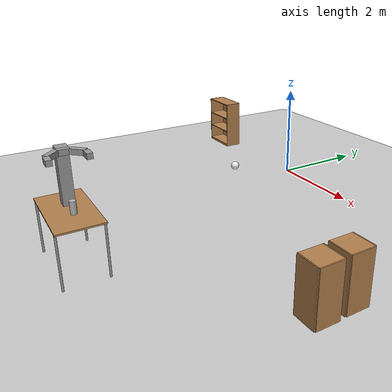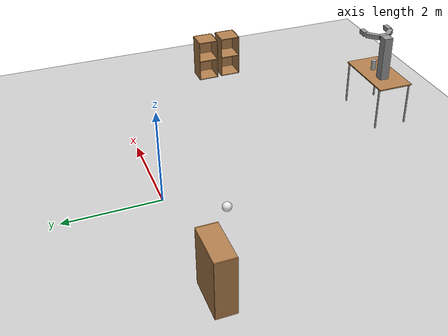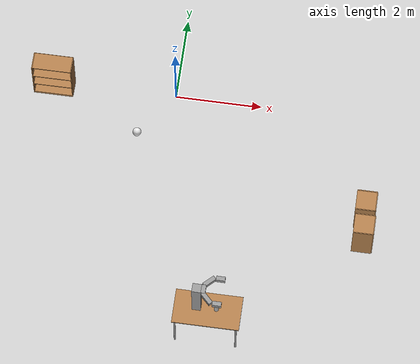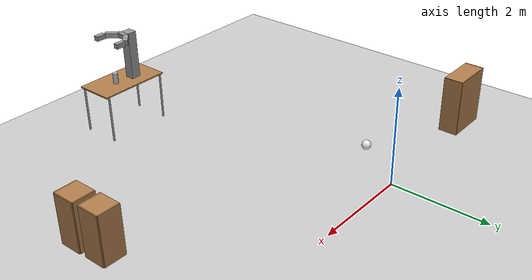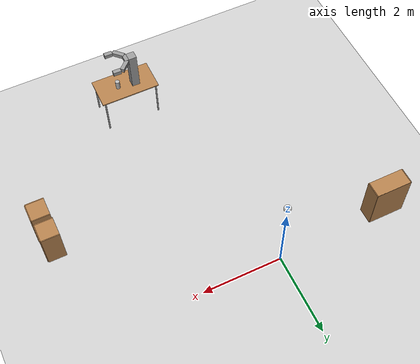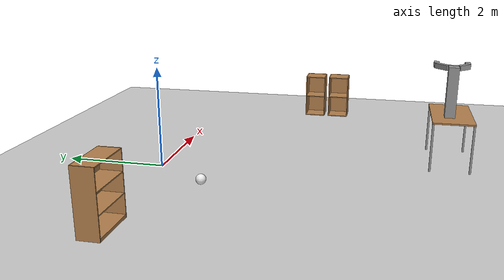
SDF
<sdf version="1.6">
 <world name="default">
  <model name="ground_plane">
   <static>1</static>
   <link name="link">
    <collision name="collision">
     <geometry><plane><normal>0 0 1</normal><size>100 100</size></plane></geometry>
     <surface>
      <contact><collide_bitmask>65535</collide_bitmask></contact>
      <friction><ode><mu>100</mu><mu2>50</mu2></ode></friction>
     </surface>
    </collision>
    <visual name="visual">
     <cast_shadows>0</cast_shadows>
     <geometry><plane><normal>0 0 1</normal><size>100 100</size></plane></geometry>
     <material>
      <script><uri>file://media/materials/scripts/gazebo.material</uri><name>Gazebo/Grey</name></script>
     </material>
    </visual>
   </link>
  </model>
  <model name="cabinet">
   <static>1</static>
   <link name="cabinet_bottom_plate">
    <inertial>
     <pose>0 0 -1 0 -0 0</pose>
     <inertia><ixx>2.05</ixx><ixy>0</ixy><ixz>0</ixz><iyy>2.05</iyy><iyz>0</iyz><izz>2.05</izz></inertia>
     <mass>25</mass>
    </inertial>
    <collision name="cabinet_bottom_plate_geom">
     <pose>0 0 0.01 0 -0 0</pose>
     <geometry><box><size>0.45 0.45 0.02</size></box></geometry>
    </collision>
    <visual name="cabinet_bottom_plate_geom_visual">
     <pose>0 0 0.01 0 -0 0</pose>
     <geometry><box><size>0.45 0.45 0.02</size></box></geometry>
     <material>
      <script><uri>file://media/materials/scripts/gazebo.material</uri><name>Gazebo/Wood</name></script>
     </material>
    </visual>
    <collision name="cabinet_bottom_plate_geom_cabinet_back_plate">
     <pose>0.235 0 0.51 0 -0 0</pose>
     <geometry><box><size>0.02 0.45 1.02</size></box></geometry>
    </collision>
    <visual name="cabinet_bottom_plate_geom_cabinet_back_plate_visual">
     <pose>0.235 0 0.51 0 -0 0</pose>
     <geometry><box><size>0.02 0.45 1.02</size></box></geometry>
     <material>
      <script><uri>file://media/materials/scripts/gazebo.material</uri><name>Gazebo/Wood</name></script>
     </material>
    </visual>
    <collision name="cabinet_bottom_plate_geom_cabinet_left_plate">
     <pose>0 0.235 0.51 0 -0 0</pose>
     <geometry><box><size>0.45 0.02 1.02</size></box></geometry>
    </collision>
    <visual name="cabinet_bottom_plate_geom_cabinet_left_plate_visual">
     <pose>0 0.235 0.51 0 -0 0</pose>
     <geometry><box><size>0.45 0.02 1.02</size></box></geometry>
     <material>
      <script><uri>file://media/materials/scripts/gazebo.material</uri><name>Gazebo/Wood</name></script>
     </material>
    </visual>
    <collision name="cabinet_bottom_plate_geom_cabinet_middle_plate">
     <pose>0 0 0.51 0 -0 0</pose>
     <geometry><box><size>0.45 0.45 0.02</size></box></geometry>
    </collision>
    <visual name="cabinet_bottom_plate_geom_cabinet_middle_plate_visual">
     <pose>0 0 0.51 0 -0 0</pose>
     <geometry><box><size>0.45 0.45 0.02</size></box></geometry>
     <material>
      <script><uri>file://media/materials/scripts/gazebo.material</uri><name>Gazebo/Wood</name></script>
     </material>
    </visual>
    <collision name="cabinet_bottom_plate_geom_cabinet_right_plate">
     <pose>0 -0.235 0.51 0 -0 0</pose>
     <geometry><box><size>0.45 0.02 1.02</size></box></geometry>
    </collision>
    <visual name="cabinet_bottom_plate_geom_cabinet_right_plate_visual">
     <pose>0 -0.235 0.51 0 -0 0</pose>
     <geometry><box><size>0.45 0.02 1.02</size></box></geometry>
     <material>
      <script><uri>file://media/materials/scripts/gazebo.material</uri><name>Gazebo/Wood</name></script>
     </material>
    </visual>
    <collision name="cabinet_bottom_plate_geom_cabinet_top_plate">
     <pose>0 0 1.01 0 -0 0</pose>
     <geometry><box><size>0.45 0.45 0.02</size></box></geometry>
    </collision>
    <visual name="cabinet_bottom_plate_geom_cabinet_top_plate_visual">
     <pose>0 0 1.01 0 -0 0</pose>
     <geometry><box><size>0.45 0.45 0.02</size></box></geometry>
     <material>
      <script><uri>file://media/materials/scripts/gazebo.material</uri><name>Gazebo/Wood</name></script>
     </material>
    </visual>
   </link>
   <pose>4.68279 -2.5185 0 0 -0 0</pose>
  </model>
  <model name="bookshelf">
   <static>1</static>
   <link name="link">
    <inertial><mass>1</mass></inertial>
    <collision name="back">
     <pose>0 0.005 0.6 0 -0 0</pose>
     <geometry><box><size>0.9 0.01 1.2</size></box></geometry>
    </collision>
    <visual name="visual1">
     <pose>0 0.005 0.6 0 -0 0</pose>
     <geometry><box><size>0.9 0.01 1.2</size></box></geometry>
     <material>
      <script><uri>file://media/materials/scripts/gazebo.material</uri><name>Gazebo/Wood</name></script>
     </material>
    </visual>
    <collision name="left_side">
     <pose>0.45 -0.195 0.6 0 -0 0</pose>
     <geometry><box><size>0.02 0.4 1.2</size></box></geometry>
    </collision>
    <visual name="visual2">
     <pose>0.45 -0.195 0.6 0 -0 0</pose>
     <geometry><box><size>0.02 0.4 1.2</size></box></geometry>
     <material>
      <script><uri>file://media/materials/scripts/gazebo.material</uri><name>Gazebo/Wood</name></script>
     </material>
    </visual>
    <collision name="right_side">
     <pose>-0.45 -0.195 0.6 0 -0 0</pose>
     <geometry><box><size>0.02 0.4 1.2</size></box></geometry>
    </collision>
    <visual name="visual3">
     <pose>-0.45 -0.195 0.6 0 -0 0</pose>
     <geometry><box><size>0.02 0.4 1.2</size></box></geometry>
     <material>
      <script><uri>file://media/materials/scripts/gazebo.material</uri><name>Gazebo/Wood</name></script>
     </material>
    </visual>
    <collision name="bottom">
     <pose>0 -0.195 0.03 0 -0 0</pose>
     <geometry><box><size>0.88 0.4 0.06</size></box></geometry>
    </collision>
    <visual name="visual4">
     <pose>0 -0.195 0.03 0 -0 0</pose>
     <geometry><box><size>0.88 0.4 0.06</size></box></geometry>
     <material>
      <script><uri>file://media/materials/scripts/gazebo.material</uri><name>Gazebo/Wood</name></script>
     </material>
    </visual>
    <collision name="top">
     <pose>0 -0.195 1.19 0 -0 0</pose>
     <geometry><box><size>0.88 0.4 0.02</size></box></geometry>
    </collision>
    <visual name="visual5">
     <pose>0 -0.195 1.19 0 -0 0</pose>
     <geometry><box><size>0.88 0.4 0.02</size></box></geometry>
     <material>
      <script><uri>file://media/materials/scripts/gazebo.material</uri><name>Gazebo/Wood</name></script>
     </material>
    </visual>
    <collision name="low_shelf">
     <pose>0 -0.195 0.43 0 -0 0</pose>
     <geometry><box><size>0.88 0.4 0.02</size></box></geometry>
    </collision>
    <visual name="visual6">
     <pose>0 -0.195 0.43 0 -0 0</pose>
     <geometry><box><size>0.88 0.4 0.02</size></box></geometry>
     <material>
      <script><uri>file://media/materials/scripts/gazebo.material</uri><name>Gazebo/Wood</name></script>
     </material>
    </visual>
    <collision name="high_shelf">
     <pose>0 -0.195 0.8 0 -0 0</pose>
     <geometry><box><size>0.88 0.4 0.02</size></box></geometry>
    </collision>
    <visual name="visual7">
     <pose>0 -0.195 0.8 0 -0 0</pose>
     <geometry><box><size>0.88 0.4 0.02</size></box></geometry>
     <material>
      <script><uri>file://media/materials/scripts/gazebo.material</uri><name>Gazebo/Wood</name></script>
     </material>
    </visual>
   </link>
   <pose>-2.84106 0.072068 0 0 -0 0</pose>
  </model>
  <model name="cabinet_0">
   <static>1</static>
   <link name="cabinet_bottom_plate">
    <inertial>
     <pose>0 0 -1 0 -0 0</pose>
     <inertia><ixx>2.05</ixx><ixy>0</ixy><ixz>0</ixz><iyy>2.05</iyy><iyz>0</iyz><izz>2.05</izz></inertia>
     <mass>25</mass>
    </inertial>
    <collision name="cabinet_bottom_plate_geom">
     <pose>0 0 0.01 0 -0 0</pose>
     <geometry><box><size>0.45 0.45 0.02</size></box></geometry>
    </collision>
    <visual name="cabinet_bottom_plate_geom_visual">
     <pose>0 0 0.01 0 -0 0</pose>
     <geometry><box><size>0.45 0.45 0.02</size></box></geometry>
     <material>
      <script><uri>file://media/materials/scripts/gazebo.material</uri><name>Gazebo/Wood</name></script>
     </material>
    </visual>
    <collision name="cabinet_bottom_plate_geom_cabinet_back_plate">
     <pose>0.235 0 0.51 0 -0 0</pose>
     <geometry><box><size>0.02 0.45 1.02</size></box></geometry>
    </collision>
    <visual name="cabinet_bottom_plate_geom_cabinet_back_plate_visual">
     <pose>0.235 0 0.51 0 -0 0</pose>
     <geometry><box><size>0.02 0.45 1.02</size></box></geometry>
     <material>
      <script><uri>file://media/materials/scripts/gazebo.material</uri><name>Gazebo/Wood</name></script>
     </material>
    </visual>
    <collision name="cabinet_bottom_plate_geom_cabinet_left_plate">
     <pose>0 0.235 0.51 0 -0 0</pose>
     <geometry><box><size>0.45 0.02 1.02</size></box></geometry>
    </collision>
    <visual name="cabinet_bottom_plate_geom_cabinet_left_plate_visual">
     <pose>0 0.235 0.51 0 -0 0</pose>
     <geometry><box><size>0.45 0.02 1.02</size></box></geometry>
     <material>
      <script><uri>file://media/materials/scripts/gazebo.material</uri><name>Gazebo/Wood</name></script>
     </material>
    </visual>
    <collision name="cabinet_bottom_plate_geom_cabinet_middle_plate">
     <pose>0 0 0.51 0 -0 0</pose>
     <geometry><box><size>0.45 0.45 0.02</size></box></geometry>
    </collision>
    <visual name="cabinet_bottom_plate_geom_cabinet_middle_plate_visual">
     <pose>0 0 0.51 0 -0 0</pose>
     <geometry><box><size>0.45 0.45 0.02</size></box></geometry>
     <material>
      <script><uri>file://media/materials/scripts/gazebo.material</uri><name>Gazebo/Wood</name></script>
     </material>
    </visual>
    <collision name="cabinet_bottom_plate_geom_cabinet_right_plate">
     <pose>0 -0.235 0.51 0 -0 0</pose>
     <geometry><box><size>0.45 0.02 1.02</size></box></geometry>
    </collision>
    <visual name="cabinet_bottom_plate_geom_cabinet_right_plate_visual">
     <pose>0 -0.235 0.51 0 -0 0</pose>
     <geometry><box><size>0.45 0.02 1.02</size></box></geometry>
     <material>
      <script><uri>file://media/materials/scripts/gazebo.material</uri><name>Gazebo/Wood</name></script>
     </material>
    </visual>
    <collision name="cabinet_bottom_plate_geom_cabinet_top_plate">
     <pose>0 0 1.01 0 -0 0</pose>
     <geometry><box><size>0.45 0.45 0.02</size></box></geometry>
    </collision>
    <visual name="cabinet_bottom_plate_geom_cabinet_top_plate_visual">
     <pose>0 0 1.01 0 -0 0</pose>
     <geometry><box><size>0.45 0.45 0.02</size></box></geometry>
     <material>
      <script><uri>file://media/materials/scripts/gazebo.material</uri><name>Gazebo/Wood</name></script>
     </material>
    </visual>
   </link>
   <pose>4.70024 -3.10262 0 0 -0 0</pose>
  </model>
  <model name="table_2">
   <static>1</static>
   <link name="link">
    <collision name="surface">
     <pose>0 0 1 0 -0 0</pose>
     <geometry><box><size>1.5 0.8 0.03</size></box></geometry>
     <surface><friction><ode><mu>0.6</mu><mu2>0.6</mu2></ode></friction></surface>
    </collision>
    <visual name="visual1">
     <pose>0 0 1 0 -0 0</pose>
     <geometry><box><size>1.5 0.8 0.03</size></box></geometry>
     <material>
      <script><uri>file://media/materials/scripts/gazebo.material</uri><name>Gazebo/Wood</name></script>
     </material>
    </visual>
    <collision name="front_left_leg">
     <pose>0.68 0.38 0.5 0 -0 0</pose>
     <geometry><cylinder><radius>0.02</radius><length>1</length></cylinder></geometry>
    </collision>
    <visual name="front_left_leg">
     <pose>0.68 0.38 0.5 0 -0 0</pose>
     <geometry><cylinder><radius>0.02</radius><length>1</length></cylinder></geometry>
     <material>
      <script><uri>file://media/materials/scripts/gazebo.material</uri><name>Gazebo/Grey</name></script>
     </material>
    </visual>
    <collision name="front_right_leg">
     <pose>0.68 -0.38 0.5 0 -0 0</pose>
     <geometry><cylinder><radius>0.02</radius><length>1</length></cylinder></geometry>
    </collision>
    <visual name="front_right_leg">
     <pose>0.68 -0.38 0.5 0 -0 0</pose>
     <geometry><cylinder><radius>0.02</radius><length>1</length></cylinder></geometry>
     <material>
      <script><uri>file://media/materials/scripts/gazebo.material</uri><name>Gazebo/Grey</name></script>
     </material>
    </visual>
    <collision name="back_right_leg">
     <pose>-0.68 -0.38 0.5 0 -0 0</pose>
     <geometry><cylinder><radius>0.02</radius><length>1</length></cylinder></geometry>
    </collision>
    <visual name="back_right_leg">
     <pose>-0.68 -0.38 0.5 0 -0 0</pose>
     <geometry><cylinder><radius>0.02</radius><length>1</length></cylinder></geometry>
     <material>
      <script><uri>file://media/materials/scripts/gazebo.material</uri><name>Gazebo/Grey</name></script>
     </material>
    </visual>
    <collision name="back_left_leg">
     <pose>-0.68 0.38 0.5 0 -0 0</pose>
     <geometry><cylinder><radius>0.02</radius><length>1</length></cylinder></geometry>
    </collision>
    <visual name="back_left_leg">
     <pose>-0.68 0.38 0.5 0 -0 0</pose>
     <geometry><cylinder><radius>0.02</radius><length>1</length></cylinder></geometry>
     <material>
      <script><uri>file://media/materials/scripts/gazebo.material</uri><name>Gazebo/Grey</name></script>
     </material>
    </visual>
   </link>
   <pose>1.50507 -5.63553 0 0 -0 0</pose>
  </model>
  <model name="RobotGripper_clone">
   <link name="link_0">
    <pose>-0.270333 0 -0.375 0 -0 0</pose>
    <inertial>
     <mass>1</mass>
     <inertia>
      <ixx>0.166667</ixx>
      <ixy>0</ixy>
      <ixz>0</ixz>
      <iyy>0.166667</iyy>
      <iyz>0</iyz>
      <izz>0.166667</izz>
     </inertia>
     <pose>0 0 -0.5 0 -0 0</pose>
    </inertial>
    <visual name="visual">
     <geometry><box><size>0.2 0.2 1</size></box></geometry>
     <material>
      <lighting>1</lighting>
      <script><uri>file://media/materials/scripts/gazebo.material</uri><name>Gazebo/Grey</name></script>
      <shader type="pixel"><normal_map>__default__</normal_map></shader>
      <ambient>0.3 0.3 0.3 1</ambient>
      <diffuse>0.7 0.7 0.7 1</diffuse>
      <specular>0.01 0.01 0.01 1</specular>
      <emissive>0 0 0 1</emissive>
     </material>
    </visual>
    <collision name="collision">
     <geometry><box><size>0.2 0.2 1</size></box></geometry>
     <surface>
      <friction>
       <ode><mu>1</mu><mu2>1</mu2><fdir1>0 0 0</fdir1><slip1>0</slip1><slip2>0</slip2></ode>
       <torsional>
        <coefficient>1</coefficient>
        <patch_radius>0</patch_radius>
        <surface_radius>0</surface_radius>
        <use_patch_radius>1</use_patch_radius>
        <ode><slip>0</slip></ode>
       </torsional>
      </friction>
      <bounce><restitution_coefficient>0</restitution_coefficient><threshold>1e+06</threshold></bounce>
      <contact>
       <collide_without_contact>0</collide_without_contact>
       <collide_without_contact_bitmask>1</collide_without_contact_bitmask>
       <collide_bitmask>1</collide_bitmask>
       <ode>
        <soft_cfm>0</soft_cfm>
        <soft_erp>0.2</soft_erp>
        <kp>1e+13</kp>
        <kd>1</kd>
        <max_vel>0.01</max_vel>
        <min_depth>0</min_depth>
       </ode>
       <bullet>
        <split_impulse>1</split_impulse>
        <split_impulse_penetration_threshold>-0.01</split_impulse_penetration_threshold>
        <soft_cfm>0</soft_cfm>
        <soft_erp>0.2</soft_erp>
        <kp>1e+13</kp>
        <kd>1</kd>
       </bullet>
      </contact>
     </surface>
    </collision>
   </link>
   <link name="link_1">
    <pose>-0.120333 0 0.075 0 -0 0</pose>
    <inertial>
     <mass>1</mass>
     <inertia>
      <ixx>0.166667</ixx>
      <ixy>0</ixy>
      <ixz>0</ixz>
      <iyy>0.166667</iyy>
      <iyz>0</iyz>
      <izz>0.166667</izz>
     </inertia>
    </inertial>
    <visual name="visual">
     <geometry><box><size>0.1 0.2 0.1</size></box></geometry>
     <material>
      <lighting>1</lighting>
      <script><uri>file://media/materials/scripts/gazebo.material</uri><name>Gazebo/Grey</name></script>
      <shader type="pixel"><normal_map>__default__</normal_map></shader>
      <ambient>0.3 0.3 0.3 1</ambient>
      <diffuse>0.7 0.7 0.7 1</diffuse>
      <specular>0.01 0.01 0.01 1</specular>
      <emissive>0 0 0 1</emissive>
     </material>
    </visual>
    <collision name="collision">
     <geometry><box><size>0.1 0.2 0.1</size></box></geometry>
     <surface>
      <friction>
       <ode><mu>1</mu><mu2>1</mu2><fdir1>0 0 0</fdir1><slip1>0</slip1><slip2>0</slip2></ode>
       <torsional>
        <coefficient>1</coefficient>
        <patch_radius>0</patch_radius>
        <surface_radius>0</surface_radius>
        <use_patch_radius>1</use_patch_radius>
        <ode><slip>0</slip></ode>
       </torsional>
      </friction>
      <bounce><restitution_coefficient>0</restitution_coefficient><threshold>1e+06</threshold></bounce>
      <contact>
       <collide_without_contact>0</collide_without_contact>
       <collide_without_contact_bitmask>1</collide_without_contact_bitmask>
       <collide_bitmask>1</collide_bitmask>
       <ode>
        <soft_cfm>0</soft_cfm>
        <soft_erp>0.2</soft_erp>
        <kp>1e+13</kp>
        <kd>1</kd>
        <max_vel>0.01</max_vel>
        <min_depth>0</min_depth>
       </ode>
       <bullet>
        <split_impulse>1</split_impulse>
        <split_impulse_penetration_threshold>-0.01</split_impulse_penetration_threshold>
        <soft_cfm>0</soft_cfm>
        <soft_erp>0.2</soft_erp>
        <kp>1e+13</kp>
        <kd>1</kd>
       </bullet>
      </contact>
     </surface>
    </collision>
   </link>
   <link name="link_2">
    <pose>-0.020333 0.2 0.075 0 0 -0.78539</pose>
    <inertial>
     <mass>1</mass>
     <inertia>
      <ixx>0.166667</ixx>
      <ixy>0</ixy>
      <ixz>0</ixz>
      <iyy>0.166667</iyy>
      <iyz>0</iyz>
      <izz>0.166667</izz>
     </inertia>
    </inertial>
    <visual name="visual">
     <geometry><box><size>0.1 0.3 0.1</size></box></geometry>
     <material>
      <lighting>1</lighting>
      <script><uri>file://media/materials/scripts/gazebo.material</uri><name>Gazebo/Grey</name></script>
      <shader type="pixel"><normal_map>__default__</normal_map></shader>
      <ambient>0.3 0.3 0.3 1</ambient>
      <diffuse>0.7 0.7 0.7 1</diffuse>
      <specular>0.01 0.01 0.01 1</specular>
      <emissive>0 0 0 1</emissive>
     </material>
    </visual>
    <collision name="collision">
     <geometry><box><size>0.1 0.3 0.1</size></box></geometry>
     <surface>
      <friction>
       <ode><mu>1</mu><mu2>1</mu2><fdir1>0 0 0</fdir1><slip1>0</slip1><slip2>0</slip2></ode>
       <torsional>
        <coefficient>1</coefficient>
        <patch_radius>0</patch_radius>
        <surface_radius>0</surface_radius>
        <use_patch_radius>1</use_patch_radius>
        <ode><slip>0</slip></ode>
       </torsional>
      </friction>
      <bounce><restitution_coefficient>0</restitution_coefficient><threshold>1e+06</threshold></bounce>
      <contact>
       <collide_without_contact>0</collide_without_contact>
       <collide_without_contact_bitmask>1</collide_without_contact_bitmask>
       <collide_bitmask>1</collide_bitmask>
       <ode>
        <soft_cfm>0</soft_cfm>
        <soft_erp>0.2</soft_erp>
        <kp>1e+13</kp>
        <kd>1</kd>
        <max_vel>0.01</max_vel>
        <min_depth>0</min_depth>
       </ode>
       <bullet>
        <split_impulse>1</split_impulse>
        <split_impulse_penetration_threshold>-0.01</split_impulse_penetration_threshold>
        <soft_cfm>0</soft_cfm>
        <soft_erp>0.2</soft_erp>
        <kp>1e+13</kp>
        <kd>1</kd>
       </bullet>
      </contact>
     </surface>
    </collision>
   </link>
   <link name="link_2_clone">
    <pose>-0.020333 -0.2 0.075 0 -0 0.78539</pose>
    <inertial>
     <mass>1</mass>
     <inertia>
      <ixx>0.166667</ixx>
      <ixy>0</ixy>
      <ixz>0</ixz>
      <iyy>0.166667</iyy>
      <iyz>0</iyz>
      <izz>0.166667</izz>
     </inertia>
    </inertial>
    <visual name="visual">
     <geometry><box><size>0.1 0.3 0.1</size></box></geometry>
     <material>
      <lighting>1</lighting>
      <script><uri>file://media/materials/scripts/gazebo.material</uri><name>Gazebo/Grey</name></script>
      <shader type="pixel"><normal_map>__default__</normal_map></shader>
      <ambient>0.3 0.3 0.3 1</ambient>
      <diffuse>0.7 0.7 0.7 1</diffuse>
      <specular>0.01 0.01 0.01 1</specular>
      <emissive>0 0 0 1</emissive>
     </material>
    </visual>
    <collision name="collision">
     <geometry><box><size>0.1 0.3 0.1</size></box></geometry>
     <surface>
      <friction>
       <ode><mu>1</mu><mu2>1</mu2><fdir1>0 0 0</fdir1><slip1>0</slip1><slip2>0</slip2></ode>
       <torsional>
        <coefficient>1</coefficient>
        <patch_radius>0</patch_radius>
        <surface_radius>0</surface_radius>
        <use_patch_radius>1</use_patch_radius>
        <ode><slip>0</slip></ode>
       </torsional>
      </friction>
      <bounce><restitution_coefficient>0</restitution_coefficient><threshold>1e+06</threshold></bounce>
      <contact>
       <collide_without_contact>0</collide_without_contact>
       <collide_without_contact_bitmask>1</collide_without_contact_bitmask>
       <collide_bitmask>1</collide_bitmask>
       <ode>
        <soft_cfm>0</soft_cfm>
        <soft_erp>0.2</soft_erp>
        <kp>1e+13</kp>
        <kd>1</kd>
        <max_vel>0.01</max_vel>
        <min_depth>0</min_depth>
       </ode>
       <bullet>
        <split_impulse>1</split_impulse>
        <split_impulse_penetration_threshold>-0.01</split_impulse_penetration_threshold>
        <soft_cfm>0</soft_cfm>
        <soft_erp>0.2</soft_erp>
        <kp>1e+13</kp>
        <kd>1</kd>
       </bullet>
      </contact>
     </surface>
    </collision>
   </link>
   <link name="link_3">
    <pose>0.215667 0.3 0.075 0 -0 1.5707</pose>
    <inertial>
     <mass>1</mass>
     <inertia>
      <ixx>0.166667</ixx>
      <ixy>0</ixy>
      <ixz>0</ixz>
      <iyy>0.166667</iyy>
      <iyz>0</iyz>
      <izz>0.166667</izz>
     </inertia>
    </inertial>
    <visual name="visual">
     <geometry><box><size>0.1 0.2 0.1</size></box></geometry>
     <material>
      <lighting>1</lighting>
      <script><uri>file://media/materials/scripts/gazebo.material</uri><name>Gazebo/Grey</name></script>
      <shader type="pixel"><normal_map>__default__</normal_map></shader>
      <ambient>0.3 0.3 0.3 1</ambient>
      <diffuse>0.7 0.7 0.7 1</diffuse>
      <specular>0.01 0.01 0.01 1</specular>
      <emissive>0 0 0 1</emissive>
     </material>
    </visual>
    <collision name="collision">
     <geometry><box><size>0.1 0.2 0.1</size></box></geometry>
     <surface>
      <friction>
       <ode><mu>1</mu><mu2>1</mu2><fdir1>0 0 0</fdir1><slip1>0</slip1><slip2>0</slip2></ode>
       <torsional>
        <coefficient>1</coefficient>
        <patch_radius>0</patch_radius>
        <surface_radius>0</surface_radius>
        <use_patch_radius>1</use_patch_radius>
        <ode><slip>0</slip></ode>
       </torsional>
      </friction>
      <bounce><restitution_coefficient>0</restitution_coefficient><threshold>1e+06</threshold></bounce>
      <contact>
       <collide_without_contact>0</collide_without_contact>
       <collide_without_contact_bitmask>1</collide_without_contact_bitmask>
       <collide_bitmask>1</collide_bitmask>
       <ode>
        <soft_cfm>0</soft_cfm>
        <soft_erp>0.2</soft_erp>
        <kp>1e+13</kp>
        <kd>1</kd>
        <max_vel>0.01</max_vel>
        <min_depth>0</min_depth>
       </ode>
       <bullet>
        <split_impulse>1</split_impulse>
        <split_impulse_penetration_threshold>-0.01</split_impulse_penetration_threshold>
        <soft_cfm>0</soft_cfm>
        <soft_erp>0.2</soft_erp>
        <kp>1e+13</kp>
        <kd>1</kd>
       </bullet>
      </contact>
     </surface>
    </collision>
   </link>
   <link name="link_3_clone">
    <pose>0.215667 -0.3 0.075 0 -0 1.5707</pose>
    <inertial>
     <mass>1</mass>
     <inertia>
      <ixx>0.166667</ixx>
      <ixy>0</ixy>
      <ixz>0</ixz>
      <iyy>0.166667</iyy>
      <iyz>0</iyz>
      <izz>0.166667</izz>
     </inertia>
    </inertial>
    <visual name="visual">
     <geometry><box><size>0.1 0.2 0.1</size></box></geometry>
     <material>
      <lighting>1</lighting>
      <script><uri>file://media/materials/scripts/gazebo.material</uri><name>Gazebo/Grey</name></script>
      <shader type="pixel"><normal_map>__default__</normal_map></shader>
      <ambient>0.3 0.3 0.3 1</ambient>
      <diffuse>0.7 0.7 0.7 1</diffuse>
      <specular>0.01 0.01 0.01 1</specular>
      <emissive>0 0 0 1</emissive>
     </material>
    </visual>
    <collision name="collision">
     <geometry><box><size>0.1 0.2 0.1</size></box></geometry>
     <surface>
      <friction>
       <ode><mu>1</mu><mu2>1</mu2><fdir1>0 0 0</fdir1><slip1>0</slip1><slip2>0</slip2></ode>
       <torsional>
        <coefficient>1</coefficient>
        <patch_radius>0</patch_radius>
        <surface_radius>0</surface_radius>
        <use_patch_radius>1</use_patch_radius>
        <ode><slip>0</slip></ode>
       </torsional>
      </friction>
      <bounce><restitution_coefficient>0</restitution_coefficient><threshold>1e+06</threshold></bounce>
      <contact>
       <collide_without_contact>0</collide_without_contact>
       <collide_without_contact_bitmask>1</collide_without_contact_bitmask>
       <collide_bitmask>1</collide_bitmask>
       <ode>
        <soft_cfm>0</soft_cfm>
        <soft_erp>0.2</soft_erp>
        <kp>1e+13</kp>
        <kd>1</kd>
        <max_vel>0.01</max_vel>
        <min_depth>0</min_depth>
       </ode>
       <bullet>
        <split_impulse>1</split_impulse>
        <split_impulse_penetration_threshold>-0.01</split_impulse_penetration_threshold>
        <soft_cfm>0</soft_cfm>
        <soft_erp>0.2</soft_erp>
        <kp>1e+13</kp>
        <kd>1</kd>
       </bullet>
      </contact>
     </surface>
    </collision>
   </link>
   <joint name="link_0_JOINT_1" type="prismatic">
    <parent>link_0</parent>
    <child>link_1</child>
    <axis>
     <xyz>0 0 1</xyz>
     <use_parent_model_frame>0</use_parent_model_frame>
     <limit>
      <lower>-1.79769e+308</lower>
      <upper>1.79769e+308</upper>
      <effort>-1</effort>
      <velocity>-1</velocity>
     </limit>
     <dynamics>
      <spring_reference>0</spring_reference>
      <spring_stiffness>0</spring_stiffness>
      <damping>0</damping>
     </dynamics>
    </axis>
    <physics>
     <ode><limit><cfm>0</cfm><erp>0.2</erp></limit><suspension><cfm>0</cfm><erp>0.2</erp></suspension></ode>
    </physics>
   </joint>
   <joint name="link_1_JOINT_2" type="revolute">
    <parent>link_1</parent>
    <child>link_2</child>
    <axis>
     <xyz>0 0 1</xyz>
     <use_parent_model_frame>0</use_parent_model_frame>
     <limit>
      <lower>-1.79769e+308</lower>
      <upper>1.79769e+308</upper>
      <effort>-1</effort>
      <velocity>-1</velocity>
     </limit>
     <dynamics>
      <spring_reference>0</spring_reference>
      <spring_stiffness>0</spring_stiffness>
      <damping>0</damping>
     </dynamics>
    </axis>
    <physics>
     <ode><limit><cfm>0</cfm><erp>0.2</erp></limit><suspension><cfm>0</cfm><erp>0.2</erp></suspension></ode>
    </physics>
   </joint>
   <joint name="link_1_JOINT_3" type="revolute">
    <parent>link_1</parent>
    <child>link_2_clone</child>
    <axis>
     <xyz>0 0 1</xyz>
     <use_parent_model_frame>0</use_parent_model_frame>
     <limit>
      <lower>-1.79769e+308</lower>
      <upper>1.79769e+308</upper>
      <effort>-1</effort>
      <velocity>-1</velocity>
     </limit>
     <dynamics>
      <spring_reference>0</spring_reference>
      <spring_stiffness>0</spring_stiffness>
      <damping>0</damping>
     </dynamics>
    </axis>
    <physics>
     <ode><limit><cfm>0</cfm><erp>0.2</erp></limit><suspension><cfm>0</cfm><erp>0.2</erp></suspension></ode>
    </physics>
   </joint>
   <joint name="link_2_JOINT_4" type="revolute">
    <parent>link_2</parent>
    <child>link_3</child>
    <axis>
     <xyz>0 0 1</xyz>
     <use_parent_model_frame>0</use_parent_model_frame>
     <limit>
      <lower>-1.79769e+308</lower>
      <upper>1.79769e+308</upper>
      <effort>-1</effort>
      <velocity>-1</velocity>
     </limit>
     <dynamics>
      <spring_reference>0</spring_reference>
      <spring_stiffness>0</spring_stiffness>
      <damping>0</damping>
     </dynamics>
    </axis>
    <physics>
     <ode><limit><cfm>0</cfm><erp>0.2</erp></limit><suspension><cfm>0</cfm><erp>0.2</erp></suspension></ode>
    </physics>
   </joint>
   <joint name="link_2_clone_JOINT_5" type="revolute">
    <parent>link_2_clone</parent>
    <child>link_3_clone</child>
    <axis>
     <xyz>0 0 1</xyz>
     <use_parent_model_frame>0</use_parent_model_frame>
     <limit>
      <lower>-1.79769e+308</lower>
      <upper>1.79769e+308</upper>
      <effort>-1</effort>
      <velocity>-1</velocity>
     </limit>
     <dynamics>
      <spring_reference>0</spring_reference>
      <spring_stiffness>0</spring_stiffness>
      <damping>0</damping>
     </dynamics>
    </axis>
    <physics>
     <ode><limit><cfm>0</cfm><erp>0.2</erp></limit><suspension><cfm>0</cfm><erp>0.2</erp></suspension></ode>
    </physics>
   </joint>
   <static>0</static>
   <pose>1.53009 -5.58251 1.89 4e-06 -3e-06 -0.011864</pose>
  </model>
  <model name="beer">
   <link name="link">
    <pose>0 0 0.115 0 -0 0</pose>
    <inertial>
     <mass>0.39</mass>
     <inertia><ixx>0.00058</ixx><ixy>0</ixy><ixz>0</ixz><iyy>0.00058</iyy><iyz>0</iyz><izz>0.00019</izz></inertia>
    </inertial>
    <collision name="collision">
     <geometry><cylinder><radius>0.055</radius><length>0.23</length></cylinder></geometry>
    </collision>
    <visual name="visual">
     <geometry><cylinder><radius>0.055</radius><length>0.23</length></cylinder></geometry>
     <material>
      <script>
       <uri>model://beer/materials/scripts</uri>
       <uri>model://beer/materials/textures</uri>
       <name>Beer/Diffuse</name>
      </script>
     </material>
    </visual>
   </link>
   <pose>1.70178 -5.6015 1.01499 1e-06 -2.7e-05 0.000586</pose>
  </model>
  <model name="my_ball">
   <link name="link_0">
    <inertial>
     <mass>1</mass>
     <inertia><ixx>0.1</ixx><ixy>0</ixy><ixz>0</ixz><iyy>0.1</iyy><iyz>0</iyz><izz>0.1</izz></inertia>
    </inertial>
    <visual name="visual">
     <geometry><sphere><radius>0.1</radius></sphere></geometry>
     <material>
      <lighting>1</lighting>
      <script><uri>file://media/materials/scripts/gazebo.material</uri><name>Gazebo/White</name></script>
      <shader type="pixel"><normal_map>__default__</normal_map></shader>
      <ambient>1 1 1 1</ambient>
      <diffuse>1 1 1 1</diffuse>
      <specular>1 1 1 1</specular>
      <emissive>1 1 1 1</emissive>
     </material>
    </visual>
    <collision name="collision">
     <geometry><sphere><radius>0.1</radius></sphere></geometry>
     <surface>
      <friction>
       <ode><mu>1</mu><mu2>1</mu2><fdir1>0 0 0</fdir1><slip1>0</slip1><slip2>0</slip2></ode>
       <torsional>
        <coefficient>1</coefficient>
        <patch_radius>0</patch_radius>
        <surface_radius>0</surface_radius>
        <use_patch_radius>1</use_patch_radius>
        <ode><slip>0</slip></ode>
       </torsional>
      </friction>
      <bounce><restitution_coefficient>0</restitution_coefficient><threshold>1e+06</threshold></bounce>
      <contact>
       <collide_without_contact>0</collide_without_contact>
       <collide_without_contact_bitmask>1</collide_without_contact_bitmask>
       <collide_bitmask>1</collide_bitmask>
       <ode>
        <soft_cfm>0</soft_cfm>
        <soft_erp>0.2</soft_erp>
        <kp>1e+13</kp>
        <kd>1</kd>
        <max_vel>0.01</max_vel>
        <min_depth>0</min_depth>
       </ode>
       <bullet>
        <split_impulse>1</split_impulse>
        <split_impulse_penetration_threshold>-0.01</split_impulse_penetration_threshold>
        <soft_cfm>0</soft_cfm>
        <soft_erp>0.2</soft_erp>
        <kp>1e+13</kp>
        <kd>1</kd>
       </bullet>
      </contact>
     </surface>
    </collision>
   </link>
   <static>0</static>
   <pose>-0.764924 -1.06813 0.1 0 -0 0</pose>
  </model>
 </world>
</sdf>
